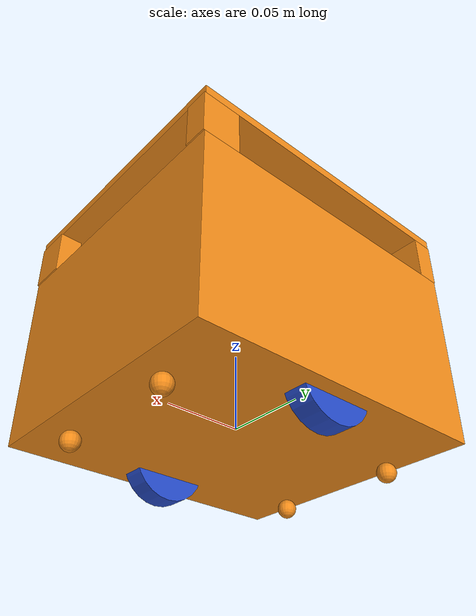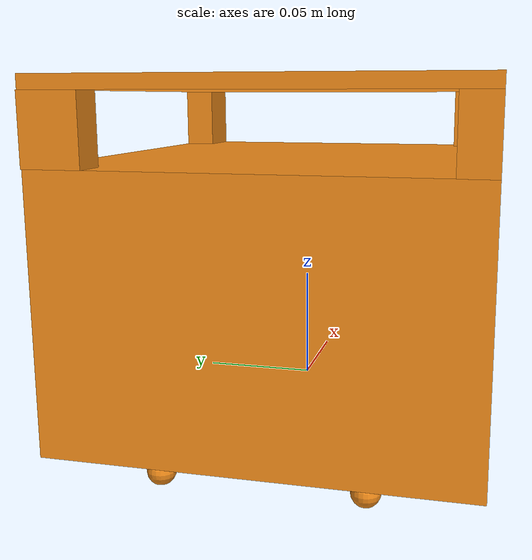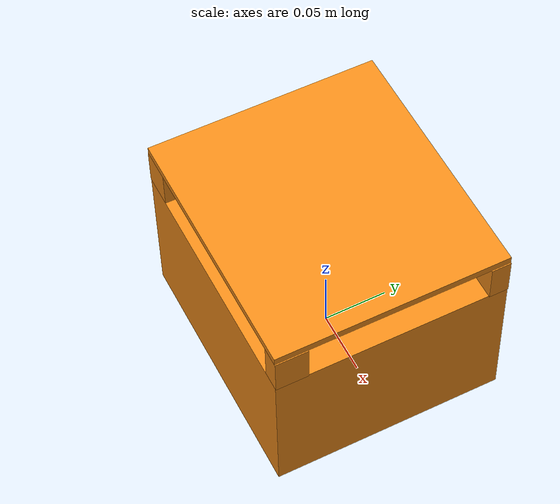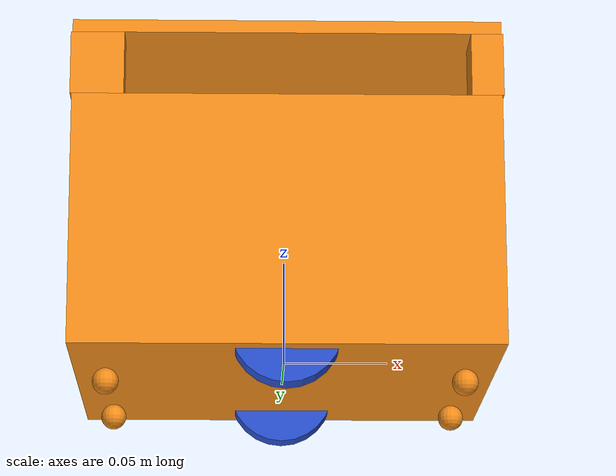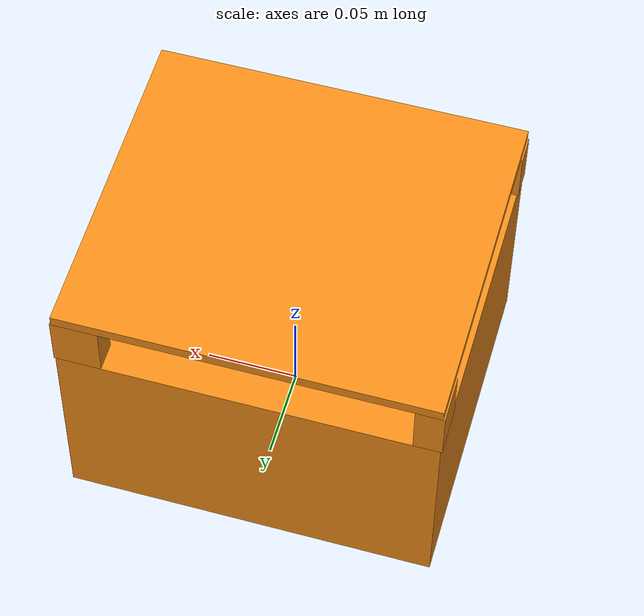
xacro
<?xml version="1.0"?>
<robot xmlns:xacro="http://www.ros.org/wiki/xacro">

    <xacro:include filename="materials.xacro" />
    <xacro:include filename="inertial_macros.xacro" />

    <!-- BASE  -->

    <link name="base_link">

    </link>

    <!-- BASE FOOTPRINT -->

    <link name="base_footprint">

    </link>

    <joint name="base_footprint_joint" type="fixed">
        <parent link="base_link"/>
        <child link="base_footprint"/>
        <origin xyz="0 0 0" rpy="0 0 0"/>
    </joint>

    <!-- BODY -->

    <link name="body_link">
        <visual>
            <origin xyz="0 0 0.04875"/>
            <geometry>
                <box size="0.2 0.1795 0.1185"/>
            </geometry>
            <material name="orange"/>
        </visual>

        <collision>
            <origin xyz="0 0 0.04875"/>
            <geometry>
                <box size="0.2 0.1795 0.1185"/>
            </geometry>
        </collision>

        <xacro:inertial_box mass="2" x="0.2" y="0.1795" z="0.1185">
            <origin xyz="0 0 0.04875"/>
        </xacro:inertial_box>
    </link>

    <joint name="body_joint" type="fixed">
        <parent link="base_link"/>
        <child link="body_link"/>
        <origin xyz="0 0 0"/>
    </joint>

    <gazebo reference="body_link">
        <material>Gazebo/Orange</material>
    </gazebo>

    <!-- COLUMNS -->

    <link name="columns_link">

        <!-- FRONT RIGHT -->

        <visual>
            <origin xyz="0.093306 -0.07725 0"/>
            <geometry>
                <box size="0.015 0.025 0.030"/>
            </geometry>
            <material name="orange"/>
        </visual>

        <!-- FRONT LEFT -->

        <visual>
            <origin xyz="0.088306 0.08225 0"/>
            <geometry>
                <box size="0.025 0.015 0.030"/>
            </geometry>
            <material name="orange"/>
        </visual>

        <!-- REAR RIGHT -->

        <visual>
            <origin xyz="-0.088306 -0.08225 0"/>
            <geometry>
                <box size="0.025 0.015 0.030"/>
            </geometry>
            <material name="orange"/>
        </visual>

        <!-- REAR LEFT -->

        <visual>
            <origin xyz="-0.093306 0.07725 0"/>
            <geometry>
                <box size="0.015 0.025 0.030"/>
            </geometry>
            <material name="orange"/>
        </visual>

        <collision>
            <origin xyz="0 0 0.0"/>
            <geometry>
                <box size="0.2 0.1795 0.030"/>
            </geometry>
        </collision>

        <xacro:inertial_box mass="0.001" x="0.2" y="0.1795" z="0.030">
            <origin xyz="0 0 0.0"/>
        </xacro:inertial_box>

    </link>

    <joint name="columns_joint" type="fixed">
        <parent link="body_link"/>
        <child link="columns_link"/>
        <origin xyz="0 0 0.123"/>
    </joint>

    <gazebo reference="columns_link">
        <material>Gazebo/Orange</material>
    </gazebo>

    <!-- PLATFORM -->

    <link name="platform_link">
        <visual>
            <origin xyz="0 0 0"/>
            <geometry>
                <box size="0.2 0.1795 0.006"/>
            </geometry>
            <material name="orange"/>
        </visual>

        <collision>
            <origin xyz="0 0 0"/>
            <geometry>
                <box size="0.2 0.1795 0.006"/>
            </geometry>
        </collision>

        <xacro:inertial_box mass="0.001" x="0.2" y="0.1795" z="0.006">
            <origin xyz="0 0 00"/>
        </xacro:inertial_box>
    </link>

    <joint name="platform_joint" type="fixed">
        <parent link="body_link"/>
        <child link="platform_link"/>
        <origin xyz="0 0 0.141"/>
    </joint>

    <gazebo reference="platform_link">
        <material>Gazebo/Orange</material>
    </gazebo>

    <!-- WHEELS -->

    <!-- LEFT WHEEL -->

    <link name="wheel_left_link">
        <visual>
            <geometry>
                <cylinder radius="0.026" length="0.015"/>
            </geometry>
            <material name="blue"/>
        </visual>

        <collision>
            <geometry>
                <cylinder radius="0.026" length="0.015"/>
            </geometry>
        </collision>

        <xacro:inertial_cylinder mass="0.1" length="0.015" radius="0.026">
            <origin xyz="0 0 0" rpy="0 0 0"/>
        </xacro:inertial_cylinder>
    </link>

    <joint name="wheel_left_joint" type="continuous">
        <parent link="base_link"/>
        <child link="wheel_left_link"/>
        <origin xyz="0 0.07225 0" rpy="-${pi/2} 0 0"/>
        <axis xyz="0 0 1"/>
    </joint>

    <gazebo reference="wheel_left_link">
        <material>Gazebo/Blue</material>
    </gazebo>

    <!-- RIGHT WHEEL -->

    <link name="wheel_right_link">
        <visual>
            <geometry>
                <cylinder radius="0.026" length="0.015"/>
            </geometry>
            <material name="blue"/>
        </visual>

        <collision>
            <geometry>
                <cylinder radius="0.026" length="0.015"/>
            </geometry>
        </collision>

        <xacro:inertial_cylinder mass="0.1" length="0.015" radius="0.026">
            <origin xyz="0 0 0" rpy="0 0 0"/>
        </xacro:inertial_cylinder>
    </link>

    <joint name="wheel_right_joint" type="continuous">
        <parent link="base_link"/>
        <child link="wheel_right_link"/>
        <origin xyz="0 -0.07225 0" rpy="${pi/2} 0 0"/>
        <axis xyz="0 0 -1"/>
    </joint>

     <gazebo reference="wheel_right_link">
        <material>Gazebo/Blue</material>
    </gazebo>

    <!-- CASTER WHEELS-->

    <!-- RIGHT FRONT CASTER-->

    <link name="caster_rf_link">
        <visual>
            <geometry>
                <sphere radius="0.00625"/>
            </geometry>
        </visual>

        <collision>
            <geometry>
                <sphere radius="0.00625"/>
            </geometry>
        </collision>

        <xacro:inertial_sphere mass="0.01" radius="0.00625">
            <origin xyz="0 0 0"/>
        </xacro:inertial_sphere>
    </link>

    <joint name="caster_rf_joint" type="fixed">
        <parent link="body_link"/>
        <child link="caster_rf_link"/>
        <origin xyz="0.08435 -0.0431 -0.01825"/>
    </joint>

    <gazebo reference="caster_rf_link">
        <material>Gazebo/Orange</material>
        <mu1 value="0.001"/>
        <mu2 value="0.001"/>
    </gazebo>

    <!-- LEFT FRONT CASTER-->

    <link name="caster_lf_link">
        <visual>
            <geometry>
                <sphere radius="0.00625"/>
            </geometry>
            <material name="orange"/>
        </visual>

        <collision>
            <geometry>
                <sphere radius="0.00625"/>
            </geometry>
        </collision>

        <xacro:inertial_sphere mass="0.01" radius="0.00625">
            <origin xyz="0 0 0"/>
        </xacro:inertial_sphere>
    </link>

    <joint name="caster_lf_joint" type="fixed">
        <parent link="body_link"/>
        <child link="caster_lf_link"/>
        <origin xyz="0.08435 0.0431 -0.01825"/>
    </joint>

    <gazebo reference="caster_lf_link">
        <material>Gazebo/Orange</material>
        <mu1 value="0.001"/>
        <mu2 value="0.001"/>
    </gazebo>

    <!-- RIGHT REAR CASTER-->

    <link name="caster_rr_link">
        <visual>
            <geometry>
                <sphere radius="0.00625"/>
            </geometry>
            <material name="orange"/>
        </visual>

        <collision>
            <geometry>
                <sphere radius="0.00625"/>
            </geometry>
        </collision>

        <xacro:inertial_sphere mass="0.01" radius="0.00625">
            <origin xyz="0 0 0"/>
        </xacro:inertial_sphere>
    </link>

    <joint name="caster_rr_joint" type="fixed">
        <parent link="body_link"/>
        <child link="caster_rr_link"/>
        <origin xyz="-0.08435 -0.0431 -0.01825"/>
    </joint>

    <gazebo reference="caster_rr_link">
        <material>Gazebo/Orange</material>
        <mu1 value="0.001"/>
        <mu2 value="0.001"/>
    </gazebo>

    <!-- LEFT REAR CASTER-->

    <link name="caster_lr_link">
        <visual>
            <geometry>
                <sphere radius="0.00625"/>
            </geometry>
            <material name="orange"/>
        </visual>

        <collision>
            <geometry>
                <sphere radius="0.00625"/>
            </geometry>
        </collision>

        <xacro:inertial_sphere mass="0.01" radius="0.00625">
            <origin xyz="0 0 0"/>
        </xacro:inertial_sphere>
    </link>

    <joint name="caster_lr_joint" type="fixed">
        <parent link="body_link"/>
        <child link="caster_lr_link"/>
        <origin xyz="-0.08435 0.0431 -0.01825"/>
    </joint>

    <gazebo reference="caster_lr_link">
        <material>Gazebo/Orange</material>
        <mu1 value="0.001"/>
        <mu21 value="0.001"/>
    </gazebo>

</robot>
